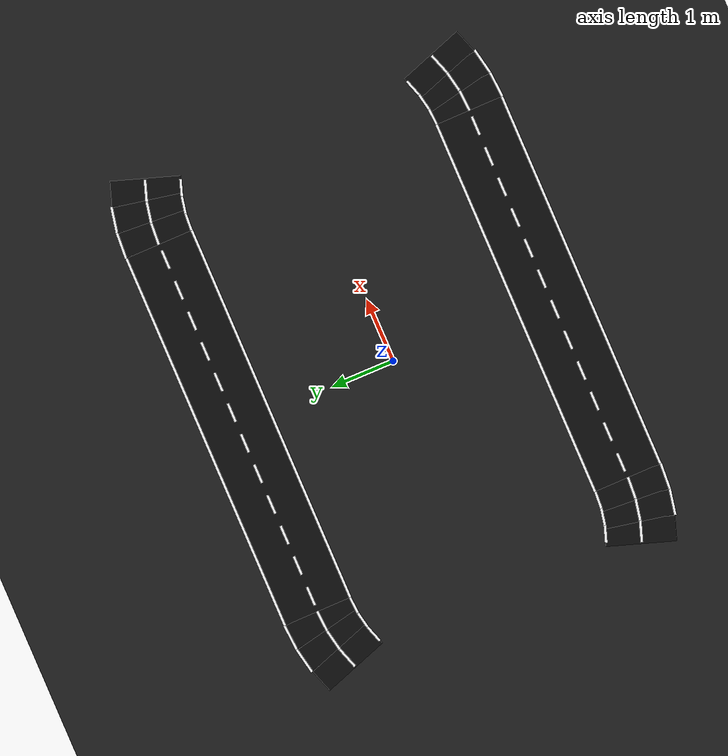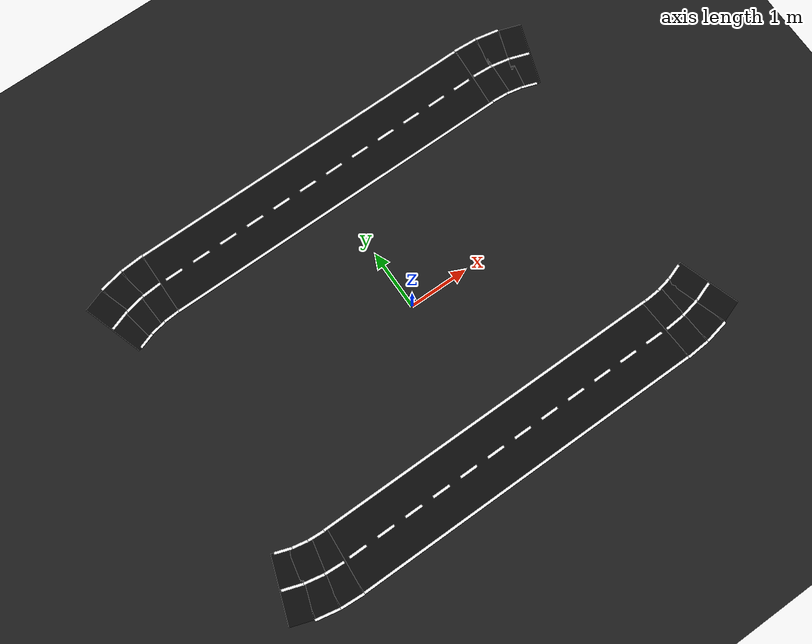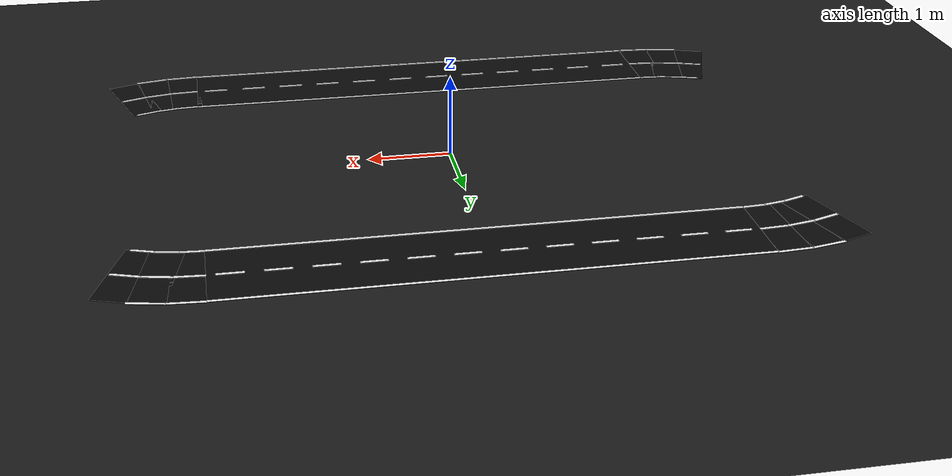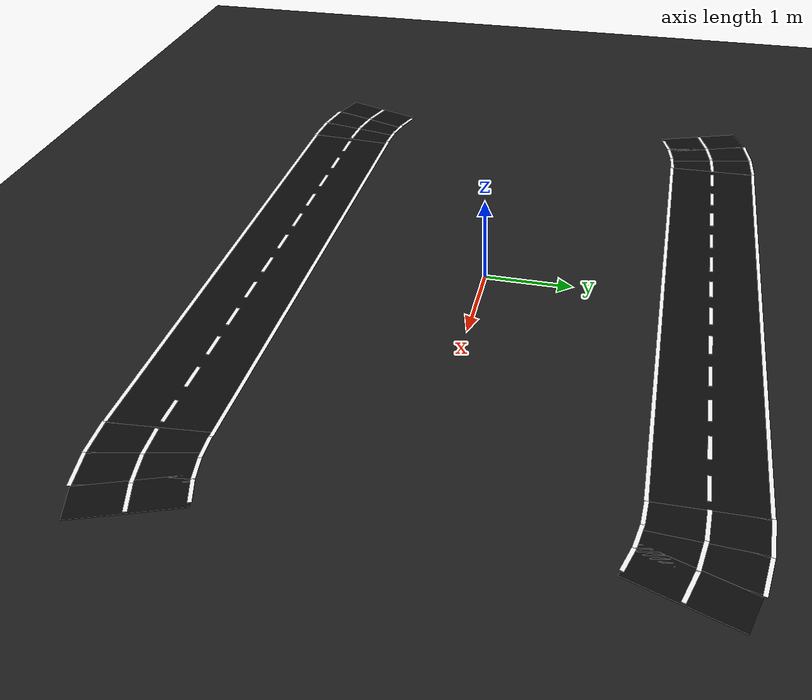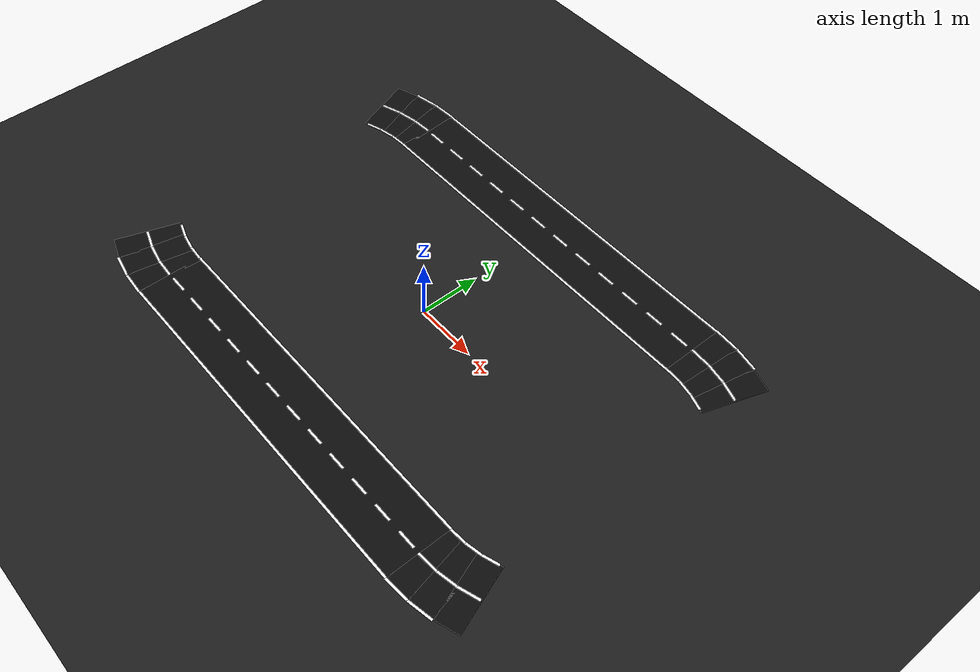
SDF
<sdf version="1.6">
 <world name="oval_lane_world">
  <model name="ground_plane">
   <static>true</static>
   <link name="link">
    <collision name="collision">
     <geometry><plane><normal>0 0 1</normal><size>100 100</size></plane></geometry>
     <surface><friction><ode><mu>1.0</mu><mu2>1.0</mu2></ode></friction></surface>
    </collision>
    <visual name="visual">
     <geometry><plane><normal>0 0 1</normal><size>100 100</size></plane></geometry>
     <material><ambient>0.10 0.10 0.10 1</ambient><diffuse>0.12 0.12 0.12 1</diffuse></material>
    </visual>
   </link>
  </model>
  <model name="road_top">
   <static>true</static>
   <pose>0.00000 2.53400 0.00250 0 0 0.00000</pose>
   <link name="link">
    <visual name="visual">
     <geometry><box><size>6.00000 1.06800 0.00500</size></box></geometry>
     <material>
      <ambient>0.030 0.030 0.030 1</ambient>
      <diffuse>0.050 0.050 0.050 1</diffuse>
      <specular>0.05 0.05 0.05 1</specular>
     </material>
    </visual>
   </link>
  </model>
  <model name="road_bot">
   <static>true</static>
   <pose>0.00000 -2.53400 0.00250 0 0 0.00000</pose>
   <link name="link">
    <visual name="visual">
     <geometry><box><size>6.00000 1.06800 0.00500</size></box></geometry>
     <material>
      <ambient>0.030 0.030 0.030 1</ambient>
      <diffuse>0.050 0.050 0.050 1</diffuse>
      <specular>0.05 0.05 0.05 1</specular>
     </material>
    </visual>
   </link>
  </model>
  <model name="sl_top_0">
   <static>true</static>
   <pose>0.00000 2.00000 0.00700 0 0 0.00000</pose>
   <link name="link">
    <visual name="visual">
     <geometry><box><size>6.00000 0.04000 0.00400</size></box></geometry>
     <material>
      <ambient>1.000 1.000 1.000 1</ambient>
      <diffuse>1.000 1.000 1.000 1</diffuse>
      <specular>0.05 0.05 0.05 1</specular>
     </material>
    </visual>
   </link>
  </model>
  <model name="sl_bot_0">
   <static>true</static>
   <pose>0.00000 -2.00000 0.00700 0 0 0.00000</pose>
   <link name="link">
    <visual name="visual">
     <geometry><box><size>6.00000 0.04000 0.00400</size></box></geometry>
     <material>
      <ambient>1.000 1.000 1.000 1</ambient>
      <diffuse>1.000 1.000 1.000 1</diffuse>
      <specular>0.05 0.05 0.05 1</specular>
     </material>
    </visual>
   </link>
  </model>
  <model name="dl_top_1_0">
   <static>true</static>
   <pose>-2.75000 2.53400 0.00700 0 0 0.00000</pose>
   <link name="link">
    <visual name="visual">
     <geometry><box><size>0.30000 0.04000 0.00400</size></box></geometry>
     <material>
      <ambient>1.000 1.000 1.000 1</ambient>
      <diffuse>1.000 1.000 1.000 1</diffuse>
      <specular>0.05 0.05 0.05 1</specular>
     </material>
    </visual>
   </link>
  </model>
  <model name="dl_top_1_1">
   <static>true</static>
   <pose>-2.25000 2.53400 0.00700 0 0 0.00000</pose>
   <link name="link">
    <visual name="visual">
     <geometry><box><size>0.30000 0.04000 0.00400</size></box></geometry>
     <material>
      <ambient>1.000 1.000 1.000 1</ambient>
      <diffuse>1.000 1.000 1.000 1</diffuse>
      <specular>0.05 0.05 0.05 1</specular>
     </material>
    </visual>
   </link>
  </model>
  <model name="dl_top_1_2">
   <static>true</static>
   <pose>-1.75000 2.53400 0.00700 0 0 0.00000</pose>
   <link name="link">
    <visual name="visual">
     <geometry><box><size>0.30000 0.04000 0.00400</size></box></geometry>
     <material>
      <ambient>1.000 1.000 1.000 1</ambient>
      <diffuse>1.000 1.000 1.000 1</diffuse>
      <specular>0.05 0.05 0.05 1</specular>
     </material>
    </visual>
   </link>
  </model>
  <model name="dl_top_1_3">
   <static>true</static>
   <pose>-1.25000 2.53400 0.00700 0 0 0.00000</pose>
   <link name="link">
    <visual name="visual">
     <geometry><box><size>0.30000 0.04000 0.00400</size></box></geometry>
     <material>
      <ambient>1.000 1.000 1.000 1</ambient>
      <diffuse>1.000 1.000 1.000 1</diffuse>
      <specular>0.05 0.05 0.05 1</specular>
     </material>
    </visual>
   </link>
  </model>
  <model name="dl_top_1_4">
   <static>true</static>
   <pose>-0.75000 2.53400 0.00700 0 0 0.00000</pose>
   <link name="link">
    <visual name="visual">
     <geometry><box><size>0.30000 0.04000 0.00400</size></box></geometry>
     <material>
      <ambient>1.000 1.000 1.000 1</ambient>
      <diffuse>1.000 1.000 1.000 1</diffuse>
      <specular>0.05 0.05 0.05 1</specular>
     </material>
    </visual>
   </link>
  </model>
  <model name="dl_top_1_5">
   <static>true</static>
   <pose>-0.25000 2.53400 0.00700 0 0 0.00000</pose>
   <link name="link">
    <visual name="visual">
     <geometry><box><size>0.30000 0.04000 0.00400</size></box></geometry>
     <material>
      <ambient>1.000 1.000 1.000 1</ambient>
      <diffuse>1.000 1.000 1.000 1</diffuse>
      <specular>0.05 0.05 0.05 1</specular>
     </material>
    </visual>
   </link>
  </model>
  <model name="dl_top_1_6">
   <static>true</static>
   <pose>0.25000 2.53400 0.00700 0 0 0.00000</pose>
   <link name="link">
    <visual name="visual">
     <geometry><box><size>0.30000 0.04000 0.00400</size></box></geometry>
     <material>
      <ambient>1.000 1.000 1.000 1</ambient>
      <diffuse>1.000 1.000 1.000 1</diffuse>
      <specular>0.05 0.05 0.05 1</specular>
     </material>
    </visual>
   </link>
  </model>
  <model name="dl_top_1_7">
   <static>true</static>
   <pose>0.75000 2.53400 0.00700 0 0 0.00000</pose>
   <link name="link">
    <visual name="visual">
     <geometry><box><size>0.30000 0.04000 0.00400</size></box></geometry>
     <material>
      <ambient>1.000 1.000 1.000 1</ambient>
      <diffuse>1.000 1.000 1.000 1</diffuse>
      <specular>0.05 0.05 0.05 1</specular>
     </material>
    </visual>
   </link>
  </model>
  <model name="dl_top_1_8">
   <static>true</static>
   <pose>1.25000 2.53400 0.00700 0 0 0.00000</pose>
   <link name="link">
    <visual name="visual">
     <geometry><box><size>0.30000 0.04000 0.00400</size></box></geometry>
     <material>
      <ambient>1.000 1.000 1.000 1</ambient>
      <diffuse>1.000 1.000 1.000 1</diffuse>
      <specular>0.05 0.05 0.05 1</specular>
     </material>
    </visual>
   </link>
  </model>
  <model name="dl_top_1_9">
   <static>true</static>
   <pose>1.75000 2.53400 0.00700 0 0 0.00000</pose>
   <link name="link">
    <visual name="visual">
     <geometry><box><size>0.30000 0.04000 0.00400</size></box></geometry>
     <material>
      <ambient>1.000 1.000 1.000 1</ambient>
      <diffuse>1.000 1.000 1.000 1</diffuse>
      <specular>0.05 0.05 0.05 1</specular>
     </material>
    </visual>
   </link>
  </model>
  <model name="dl_top_1_10">
   <static>true</static>
   <pose>2.25000 2.53400 0.00700 0 0 0.00000</pose>
   <link name="link">
    <visual name="visual">
     <geometry><box><size>0.30000 0.04000 0.00400</size></box></geometry>
     <material>
      <ambient>1.000 1.000 1.000 1</ambient>
      <diffuse>1.000 1.000 1.000 1</diffuse>
      <specular>0.05 0.05 0.05 1</specular>
     </material>
    </visual>
   </link>
  </model>
  <model name="dl_top_1_11">
   <static>true</static>
   <pose>2.75000 2.53400 0.00700 0 0 0.00000</pose>
   <link name="link">
    <visual name="visual">
     <geometry><box><size>0.30000 0.04000 0.00400</size></box></geometry>
     <material>
      <ambient>1.000 1.000 1.000 1</ambient>
      <diffuse>1.000 1.000 1.000 1</diffuse>
      <specular>0.05 0.05 0.05 1</specular>
     </material>
    </visual>
   </link>
  </model>
  <model name="dl_bot_1_0">
   <static>true</static>
   <pose>-2.75000 -2.53400 0.00700 0 0 0.00000</pose>
   <link name="link">
    <visual name="visual">
     <geometry><box><size>0.30000 0.04000 0.00400</size></box></geometry>
     <material>
      <ambient>1.000 1.000 1.000 1</ambient>
      <diffuse>1.000 1.000 1.000 1</diffuse>
      <specular>0.05 0.05 0.05 1</specular>
     </material>
    </visual>
   </link>
  </model>
  <model name="dl_bot_1_1">
   <static>true</static>
   <pose>-2.25000 -2.53400 0.00700 0 0 0.00000</pose>
   <link name="link">
    <visual name="visual">
     <geometry><box><size>0.30000 0.04000 0.00400</size></box></geometry>
     <material>
      <ambient>1.000 1.000 1.000 1</ambient>
      <diffuse>1.000 1.000 1.000 1</diffuse>
      <specular>0.05 0.05 0.05 1</specular>
     </material>
    </visual>
   </link>
  </model>
  <model name="dl_bot_1_2">
   <static>true</static>
   <pose>-1.75000 -2.53400 0.00700 0 0 0.00000</pose>
   <link name="link">
    <visual name="visual">
     <geometry><box><size>0.30000 0.04000 0.00400</size></box></geometry>
     <material>
      <ambient>1.000 1.000 1.000 1</ambient>
      <diffuse>1.000 1.000 1.000 1</diffuse>
      <specular>0.05 0.05 0.05 1</specular>
     </material>
    </visual>
   </link>
  </model>
  <model name="dl_bot_1_3">
   <static>true</static>
   <pose>-1.25000 -2.53400 0.00700 0 0 0.00000</pose>
   <link name="link">
    <visual name="visual">
     <geometry><box><size>0.30000 0.04000 0.00400</size></box></geometry>
     <material>
      <ambient>1.000 1.000 1.000 1</ambient>
      <diffuse>1.000 1.000 1.000 1</diffuse>
      <specular>0.05 0.05 0.05 1</specular>
     </material>
    </visual>
   </link>
  </model>
  <model name="dl_bot_1_4">
   <static>true</static>
   <pose>-0.75000 -2.53400 0.00700 0 0 0.00000</pose>
   <link name="link">
    <visual name="visual">
     <geometry><box><size>0.30000 0.04000 0.00400</size></box></geometry>
     <material>
      <ambient>1.000 1.000 1.000 1</ambient>
      <diffuse>1.000 1.000 1.000 1</diffuse>
      <specular>0.05 0.05 0.05 1</specular>
     </material>
    </visual>
   </link>
  </model>
  <model name="dl_bot_1_5">
   <static>true</static>
   <pose>-0.25000 -2.53400 0.00700 0 0 0.00000</pose>
   <link name="link">
    <visual name="visual">
     <geometry><box><size>0.30000 0.04000 0.00400</size></box></geometry>
     <material>
      <ambient>1.000 1.000 1.000 1</ambient>
      <diffuse>1.000 1.000 1.000 1</diffuse>
      <specular>0.05 0.05 0.05 1</specular>
     </material>
    </visual>
   </link>
  </model>
  <model name="dl_bot_1_6">
   <static>true</static>
   <pose>0.25000 -2.53400 0.00700 0 0 0.00000</pose>
   <link name="link">
    <visual name="visual">
     <geometry><box><size>0.30000 0.04000 0.00400</size></box></geometry>
     <material>
      <ambient>1.000 1.000 1.000 1</ambient>
      <diffuse>1.000 1.000 1.000 1</diffuse>
      <specular>0.05 0.05 0.05 1</specular>
     </material>
    </visual>
   </link>
  </model>
  <model name="dl_bot_1_7">
   <static>true</static>
   <pose>0.75000 -2.53400 0.00700 0 0 0.00000</pose>
   <link name="link">
    <visual name="visual">
     <geometry><box><size>0.30000 0.04000 0.00400</size></box></geometry>
     <material>
      <ambient>1.000 1.000 1.000 1</ambient>
      <diffuse>1.000 1.000 1.000 1</diffuse>
      <specular>0.05 0.05 0.05 1</specular>
     </material>
    </visual>
   </link>
  </model>
  <model name="dl_bot_1_8">
   <static>true</static>
   <pose>1.25000 -2.53400 0.00700 0 0 0.00000</pose>
   <link name="link">
    <visual name="visual">
     <geometry><box><size>0.30000 0.04000 0.00400</size></box></geometry>
     <material>
      <ambient>1.000 1.000 1.000 1</ambient>
      <diffuse>1.000 1.000 1.000 1</diffuse>
      <specular>0.05 0.05 0.05 1</specular>
     </material>
    </visual>
   </link>
  </model>
  <model name="dl_bot_1_9">
   <static>true</static>
   <pose>1.75000 -2.53400 0.00700 0 0 0.00000</pose>
   <link name="link">
    <visual name="visual">
     <geometry><box><size>0.30000 0.04000 0.00400</size></box></geometry>
     <material>
      <ambient>1.000 1.000 1.000 1</ambient>
      <diffuse>1.000 1.000 1.000 1</diffuse>
      <specular>0.05 0.05 0.05 1</specular>
     </material>
    </visual>
   </link>
  </model>
  <model name="dl_bot_1_10">
   <static>true</static>
   <pose>2.25000 -2.53400 0.00700 0 0 0.00000</pose>
   <link name="link">
    <visual name="visual">
     <geometry><box><size>0.30000 0.04000 0.00400</size></box></geometry>
     <material>
      <ambient>1.000 1.000 1.000 1</ambient>
      <diffuse>1.000 1.000 1.000 1</diffuse>
      <specular>0.05 0.05 0.05 1</specular>
     </material>
    </visual>
   </link>
  </model>
  <model name="dl_bot_1_11">
   <static>true</static>
   <pose>2.75000 -2.53400 0.00700 0 0 0.00000</pose>
   <link name="link">
    <visual name="visual">
     <geometry><box><size>0.30000 0.04000 0.00400</size></box></geometry>
     <material>
      <ambient>1.000 1.000 1.000 1</ambient>
      <diffuse>1.000 1.000 1.000 1</diffuse>
      <specular>0.05 0.05 0.05 1</specular>
     </material>
    </visual>
   </link>
  </model>
  <model name="sl_top_2">
   <static>true</static>
   <pose>0.00000 3.06800 0.00700 0 0 0.00000</pose>
   <link name="link">
    <visual name="visual">
     <geometry><box><size>6.00000 0.04000 0.00400</size></box></geometry>
     <material>
      <ambient>1.000 1.000 1.000 1</ambient>
      <diffuse>1.000 1.000 1.000 1</diffuse>
      <specular>0.05 0.05 0.05 1</specular>
     </material>
    </visual>
   </link>
  </model>
  <model name="sl_bot_2">
   <static>true</static>
   <pose>0.00000 -3.06800 0.00700 0 0 0.00000</pose>
   <link name="link">
    <visual name="visual">
     <geometry><box><size>6.00000 0.04000 0.00400</size></box></geometry>
     <material>
      <ambient>1.000 1.000 1.000 1</ambient>
      <diffuse>1.000 1.000 1.000 1</diffuse>
      <specular>0.05 0.05 0.05 1</specular>
     </material>
    </visual>
   </link>
  </model>
  <model name="road_r_0">
   <static>true</static>
   <pose>3.16524 2.52109 0.00250 0.0 0.0 -0.06545</pose>
   <link name="link">
    <visual name="visual">
     <geometry><box><size>0.38165 1.06800 0.00500</size></box></geometry>
     <material>
      <ambient>0.030 0.030 0.030 1</ambient>
      <diffuse>0.050 0.050 0.050 1</diffuse>
      <specular>0.05 0.05 0.05 1</specular>
     </material>
    </visual>
   </link>
  </model>
  <model name="cl_r_0_0">
   <static>true</static>
   <pose>3.13081 1.99572 0.00700 0 0 -0.06545</pose>
   <link name="link">
    <visual name="visual">
     <geometry><box><size>0.27180 0.04000 0.00400</size></box></geometry>
     <material>
      <ambient>1.000 1.000 1.000 1</ambient>
      <diffuse>1.000 1.000 1.000 1</diffuse>
      <specular>0.05 0.05 0.05 1</specular>
     </material>
    </visual>
   </link>
  </model>
  <model name="cl_r_1_0">
   <static>true</static>
   <pose>3.16573 2.52857 0.00700 0 0 -0.06545</pose>
   <link name="link">
    <visual name="visual">
     <geometry><box><size>0.34170 0.04000 0.00400</size></box></geometry>
     <material>
      <ambient>1.000 1.000 1.000 1</ambient>
      <diffuse>1.000 1.000 1.000 1</diffuse>
      <specular>0.05 0.05 0.05 1</specular>
     </material>
    </visual>
   </link>
  </model>
  <model name="cl_r_2_0">
   <static>true</static>
   <pose>3.20066 3.06143 0.00700 0 0 -0.06545</pose>
   <link name="link">
    <visual name="visual">
     <geometry><box><size>0.41160 0.04000 0.00400</size></box></geometry>
     <material>
      <ambient>1.000 1.000 1.000 1</ambient>
      <diffuse>1.000 1.000 1.000 1</diffuse>
      <specular>0.05 0.05 0.05 1</specular>
     </material>
    </visual>
   </link>
  </model>
  <model name="road_r_1">
   <static>true</static>
   <pose>3.49290 2.47795 0.00250 0.0 0.0 -0.19635</pose>
   <link name="link">
    <visual name="visual">
     <geometry><box><size>0.38165 1.06800 0.00500</size></box></geometry>
     <material>
      <ambient>0.030 0.030 0.030 1</ambient>
      <diffuse>0.050 0.050 0.050 1</diffuse>
      <specular>0.05 0.05 0.05 1</specular>
     </material>
    </visual>
   </link>
  </model>
  <model name="cl_r_0_1">
   <static>true</static>
   <pose>3.39018 1.96157 0.00700 0 0 -0.19635</pose>
   <link name="link">
    <visual name="visual">
     <geometry><box><size>0.27180 0.04000 0.00400</size></box></geometry>
     <material>
      <ambient>1.000 1.000 1.000 1</ambient>
      <diffuse>1.000 1.000 1.000 1</diffuse>
      <specular>0.05 0.05 0.05 1</specular>
     </material>
    </visual>
   </link>
  </model>
  <model name="cl_r_1_1">
   <static>true</static>
   <pose>3.49436 2.48531 0.00700 0 0 -0.19635</pose>
   <link name="link">
    <visual name="visual">
     <geometry><box><size>0.34170 0.04000 0.00400</size></box></geometry>
     <material>
      <ambient>1.000 1.000 1.000 1</ambient>
      <diffuse>1.000 1.000 1.000 1</diffuse>
      <specular>0.05 0.05 0.05 1</specular>
     </material>
    </visual>
   </link>
  </model>
  <model name="cl_r_2_1">
   <static>true</static>
   <pose>3.59854 3.00905 0.00700 0 0 -0.19635</pose>
   <link name="link">
    <visual name="visual">
     <geometry><box><size>0.41160 0.04000 0.00400</size></box></geometry>
     <material>
      <ambient>1.000 1.000 1.000 1</ambient>
      <diffuse>1.000 1.000 1.000 1</diffuse>
      <specular>0.05 0.05 0.05 1</specular>
     </material>
    </visual>
   </link>
  </model>
  <model name="road_r_2">
   <static>true</static>
   <pose>3.81211 2.39242 0.00250 0.0 0.0 -0.32725</pose>
   <link name="link">
    <visual name="visual">
     <geometry><box><size>0.38165 1.06800 0.00500</size></box></geometry>
     <material>
      <ambient>0.030 0.030 0.030 1</ambient>
      <diffuse>0.050 0.050 0.050 1</diffuse>
      <specular>0.05 0.05 0.05 1</specular>
     </material>
    </visual>
   </link>
  </model>
  <model name="cl_r_0_2">
   <static>true</static>
   <pose>3.64288 1.89386 0.00700 0 0 -0.32725</pose>
   <link name="link">
    <visual name="visual">
     <geometry><box><size>0.27180 0.04000 0.00400</size></box></geometry>
     <material>
      <ambient>1.000 1.000 1.000 1</ambient>
      <diffuse>1.000 1.000 1.000 1</diffuse>
      <specular>0.05 0.05 0.05 1</specular>
     </material>
    </visual>
   </link>
  </model>
  <model name="cl_r_1_2">
   <static>true</static>
   <pose>3.81453 2.39952 0.00700 0 0 -0.32725</pose>
   <link name="link">
    <visual name="visual">
     <geometry><box><size>0.34170 0.04000 0.00400</size></box></geometry>
     <material>
      <ambient>1.000 1.000 1.000 1</ambient>
      <diffuse>1.000 1.000 1.000 1</diffuse>
      <specular>0.05 0.05 0.05 1</specular>
     </material>
    </visual>
   </link>
  </model>
  <model name="road_r_21">
   <static>true</static>
   <pose>3.81211 -2.39242 0.00250 0.0 0.0 -2.81434</pose>
   <link name="link">
    <visual name="visual">
     <geometry><box><size>0.38165 1.06800 0.00500</size></box></geometry>
     <material>
      <ambient>0.030 0.030 0.030 1</ambient>
      <diffuse>0.050 0.050 0.050 1</diffuse>
      <specular>0.05 0.05 0.05 1</specular>
     </material>
    </visual>
   </link>
  </model>
  <model name="cl_r_0_21">
   <static>true</static>
   <pose>3.64288 -1.89386 0.00700 0 0 -2.81434</pose>
   <link name="link">
    <visual name="visual">
     <geometry><box><size>0.27180 0.04000 0.00400</size></box></geometry>
     <material>
      <ambient>1.000 1.000 1.000 1</ambient>
      <diffuse>1.000 1.000 1.000 1</diffuse>
      <specular>0.05 0.05 0.05 1</specular>
     </material>
    </visual>
   </link>
  </model>
  <model name="cl_r_1_21">
   <static>true</static>
   <pose>3.81453 -2.39952 0.00700 0 0 -2.81434</pose>
   <link name="link">
    <visual name="visual">
     <geometry><box><size>0.34170 0.04000 0.00400</size></box></geometry>
     <material>
      <ambient>1.000 1.000 1.000 1</ambient>
      <diffuse>1.000 1.000 1.000 1</diffuse>
      <specular>0.05 0.05 0.05 1</specular>
     </material>
    </visual>
   </link>
  </model>
  <model name="road_r_22">
   <static>true</static>
   <pose>3.49290 -2.47795 0.00250 0.0 0.0 -2.94524</pose>
   <link name="link">
    <visual name="visual">
     <geometry><box><size>0.38165 1.06800 0.00500</size></box></geometry>
     <material>
      <ambient>0.030 0.030 0.030 1</ambient>
      <diffuse>0.050 0.050 0.050 1</diffuse>
      <specular>0.05 0.05 0.05 1</specular>
     </material>
    </visual>
   </link>
  </model>
  <model name="cl_r_0_22">
   <static>true</static>
   <pose>3.39018 -1.96157 0.00700 0 0 -2.94524</pose>
   <link name="link">
    <visual name="visual">
     <geometry><box><size>0.27180 0.04000 0.00400</size></box></geometry>
     <material>
      <ambient>1.000 1.000 1.000 1</ambient>
      <diffuse>1.000 1.000 1.000 1</diffuse>
      <specular>0.05 0.05 0.05 1</specular>
     </material>
    </visual>
   </link>
  </model>
  <model name="cl_r_1_22">
   <static>true</static>
   <pose>3.49436 -2.48531 0.00700 0 0 -2.94524</pose>
   <link name="link">
    <visual name="visual">
     <geometry><box><size>0.34170 0.04000 0.00400</size></box></geometry>
     <material>
      <ambient>1.000 1.000 1.000 1</ambient>
      <diffuse>1.000 1.000 1.000 1</diffuse>
      <specular>0.05 0.05 0.05 1</specular>
     </material>
    </visual>
   </link>
  </model>
  <model name="cl_r_2_22">
   <static>true</static>
   <pose>3.59854 -3.00905 0.00700 0 0 -2.94524</pose>
   <link name="link">
    <visual name="visual">
     <geometry><box><size>0.41160 0.04000 0.00400</size></box></geometry>
     <material>
      <ambient>1.000 1.000 1.000 1</ambient>
      <diffuse>1.000 1.000 1.000 1</diffuse>
      <specular>0.05 0.05 0.05 1</specular>
     </material>
    </visual>
   </link>
  </model>
  <model name="road_r_23">
   <static>true</static>
   <pose>3.16524 -2.52109 0.00250 0.0 0.0 -3.07614</pose>
   <link name="link">
    <visual name="visual">
     <geometry><box><size>0.38165 1.06800 0.00500</size></box></geometry>
     <material>
      <ambient>0.030 0.030 0.030 1</ambient>
      <diffuse>0.050 0.050 0.050 1</diffuse>
      <specular>0.05 0.05 0.05 1</specular>
     </material>
    </visual>
   </link>
  </model>
  <model name="cl_r_0_23">
   <static>true</static>
   <pose>3.13081 -1.99572 0.00700 0 0 -3.07614</pose>
   <link name="link">
    <visual name="visual">
     <geometry><box><size>0.27180 0.04000 0.00400</size></box></geometry>
     <material>
      <ambient>1.000 1.000 1.000 1</ambient>
      <diffuse>1.000 1.000 1.000 1</diffuse>
      <specular>0.05 0.05 0.05 1</specular>
     </material>
    </visual>
   </link>
  </model>
  <model name="cl_r_1_23">
   <static>true</static>
   <pose>3.16573 -2.52858 0.00700 0 0 -3.07614</pose>
   <link name="link">
    <visual name="visual">
     <geometry><box><size>0.34170 0.04000 0.00400</size></box></geometry>
     <material>
      <ambient>1.000 1.000 1.000 1</ambient>
      <diffuse>1.000 1.000 1.000 1</diffuse>
      <specular>0.05 0.05 0.05 1</specular>
     </material>
    </visual>
   </link>
  </model>
  <model name="cl_r_2_23">
   <static>true</static>
   <pose>3.20066 -3.06143 0.00700 0 0 -3.07614</pose>
   <link name="link">
    <visual name="visual">
     <geometry><box><size>0.41160 0.04000 0.00400</size></box></geometry>
     <material>
      <ambient>1.000 1.000 1.000 1</ambient>
      <diffuse>1.000 1.000 1.000 1</diffuse>
      <specular>0.05 0.05 0.05 1</specular>
     </material>
    </visual>
   </link>
  </model>
  <model name="road_l_0">
   <static>true</static>
   <pose>-3.16524 -2.52109 0.00250 0.0 0.0 3.07614</pose>
   <link name="link">
    <visual name="visual">
     <geometry><box><size>0.38165 1.06800 0.00500</size></box></geometry>
     <material>
      <ambient>0.030 0.030 0.030 1</ambient>
      <diffuse>0.050 0.050 0.050 1</diffuse>
      <specular>0.05 0.05 0.05 1</specular>
     </material>
    </visual>
   </link>
  </model>
  <model name="cl_l_0_0">
   <static>true</static>
   <pose>-3.13081 -1.99572 0.00700 0 0 3.07614</pose>
   <link name="link">
    <visual name="visual">
     <geometry><box><size>0.27180 0.04000 0.00400</size></box></geometry>
     <material>
      <ambient>1.000 1.000 1.000 1</ambient>
      <diffuse>1.000 1.000 1.000 1</diffuse>
      <specular>0.05 0.05 0.05 1</specular>
     </material>
    </visual>
   </link>
  </model>
  <model name="cl_l_1_0">
   <static>true</static>
   <pose>-3.16573 -2.52857 0.00700 0 0 3.07614</pose>
   <link name="link">
    <visual name="visual">
     <geometry><box><size>0.34170 0.04000 0.00400</size></box></geometry>
     <material>
      <ambient>1.000 1.000 1.000 1</ambient>
      <diffuse>1.000 1.000 1.000 1</diffuse>
      <specular>0.05 0.05 0.05 1</specular>
     </material>
    </visual>
   </link>
  </model>
  <model name="cl_l_2_0">
   <static>true</static>
   <pose>-3.20066 -3.06143 0.00700 0 0 3.07614</pose>
   <link name="link">
    <visual name="visual">
     <geometry><box><size>0.41160 0.04000 0.00400</size></box></geometry>
     <material>
      <ambient>1.000 1.000 1.000 1</ambient>
      <diffuse>1.000 1.000 1.000 1</diffuse>
      <specular>0.05 0.05 0.05 1</specular>
     </material>
    </visual>
   </link>
  </model>
  <model name="road_l_1">
   <static>true</static>
   <pose>-3.49290 -2.47795 0.00250 0.0 0.0 2.94524</pose>
   <link name="link">
    <visual name="visual">
     <geometry><box><size>0.38165 1.06800 0.00500</size></box></geometry>
     <material>
      <ambient>0.030 0.030 0.030 1</ambient>
      <diffuse>0.050 0.050 0.050 1</diffuse>
      <specular>0.05 0.05 0.05 1</specular>
     </material>
    </visual>
   </link>
  </model>
  <model name="cl_l_0_1">
   <static>true</static>
   <pose>-3.39018 -1.96157 0.00700 0 0 2.94524</pose>
   <link name="link">
    <visual name="visual">
     <geometry><box><size>0.27180 0.04000 0.00400</size></box></geometry>
     <material>
      <ambient>1.000 1.000 1.000 1</ambient>
      <diffuse>1.000 1.000 1.000 1</diffuse>
      <specular>0.05 0.05 0.05 1</specular>
     </material>
    </visual>
   </link>
  </model>
  <model name="cl_l_1_1">
   <static>true</static>
   <pose>-3.49436 -2.48531 0.00700 0 0 2.94524</pose>
   <link name="link">
    <visual name="visual">
     <geometry><box><size>0.34170 0.04000 0.00400</size></box></geometry>
     <material>
      <ambient>1.000 1.000 1.000 1</ambient>
      <diffuse>1.000 1.000 1.000 1</diffuse>
      <specular>0.05 0.05 0.05 1</specular>
     </material>
    </visual>
   </link>
  </model>
  <model name="cl_l_2_1">
   <static>true</static>
   <pose>-3.59854 -3.00905 0.00700 0 0 2.94524</pose>
   <link name="link">
    <visual name="visual">
     <geometry><box><size>0.41160 0.04000 0.00400</size></box></geometry>
     <material>
      <ambient>1.000 1.000 1.000 1</ambient>
      <diffuse>1.000 1.000 1.000 1</diffuse>
      <specular>0.05 0.05 0.05 1</specular>
     </material>
    </visual>
   </link>
  </model>
  <model name="road_l_2">
   <static>true</static>
   <pose>-3.81211 -2.39242 0.00250 0.0 0.0 2.81434</pose>
   <link name="link">
    <visual name="visual">
     <geometry><box><size>0.38165 1.06800 0.00500</size></box></geometry>
     <material>
      <ambient>0.030 0.030 0.030 1</ambient>
      <diffuse>0.050 0.050 0.050 1</diffuse>
      <specular>0.05 0.05 0.05 1</specular>
     </material>
    </visual>
   </link>
  </model>
  <model name="cl_l_0_2">
   <static>true</static>
   <pose>-3.64288 -1.89386 0.00700 0 0 2.81434</pose>
   <link name="link">
    <visual name="visual">
     <geometry><box><size>0.27180 0.04000 0.00400</size></box></geometry>
     <material>
      <ambient>1.000 1.000 1.000 1</ambient>
      <diffuse>1.000 1.000 1.000 1</diffuse>
      <specular>0.05 0.05 0.05 1</specular>
     </material>
    </visual>
   </link>
  </model>
  <model name="cl_l_1_2">
   <static>true</static>
   <pose>-3.81453 -2.39952 0.00700 0 0 2.81434</pose>
   <link name="link">
    <visual name="visual">
     <geometry><box><size>0.34170 0.04000 0.00400</size></box></geometry>
     <material>
      <ambient>1.000 1.000 1.000 1</ambient>
      <diffuse>1.000 1.000 1.000 1</diffuse>
      <specular>0.05 0.05 0.05 1</specular>
     </material>
    </visual>
   </link>
  </model>
  <model name="road_l_21">
   <static>true</static>
   <pose>-3.81211 2.39242 0.00250 0.0 0.0 0.32725</pose>
   <link name="link">
    <visual name="visual">
     <geometry><box><size>0.38165 1.06800 0.00500</size></box></geometry>
     <material>
      <ambient>0.030 0.030 0.030 1</ambient>
      <diffuse>0.050 0.050 0.050 1</diffuse>
      <specular>0.05 0.05 0.05 1</specular>
     </material>
    </visual>
   </link>
  </model>
  <model name="cl_l_0_21">
   <static>true</static>
   <pose>-3.64288 1.89386 0.00700 0 0 0.32725</pose>
   <link name="link">
    <visual name="visual">
     <geometry><box><size>0.27180 0.04000 0.00400</size></box></geometry>
     <material>
      <ambient>1.000 1.000 1.000 1</ambient>
      <diffuse>1.000 1.000 1.000 1</diffuse>
      <specular>0.05 0.05 0.05 1</specular>
     </material>
    </visual>
   </link>
  </model>
  <model name="cl_l_1_21">
   <static>true</static>
   <pose>-3.81453 2.39952 0.00700 0 0 0.32725</pose>
   <link name="link">
    <visual name="visual">
     <geometry><box><size>0.34170 0.04000 0.00400</size></box></geometry>
     <material>
      <ambient>1.000 1.000 1.000 1</ambient>
      <diffuse>1.000 1.000 1.000 1</diffuse>
      <specular>0.05 0.05 0.05 1</specular>
     </material>
    </visual>
   </link>
  </model>
  <model name="road_l_22">
   <static>true</static>
   <pose>-3.49290 2.47795 0.00250 0.0 0.0 0.19635</pose>
   <link name="link">
    <visual name="visual">
     <geometry><box><size>0.38165 1.06800 0.00500</size></box></geometry>
     <material>
      <ambient>0.030 0.030 0.030 1</ambient>
      <diffuse>0.050 0.050 0.050 1</diffuse>
      <specular>0.05 0.05 0.05 1</specular>
     </material>
    </visual>
   </link>
  </model>
  <model name="cl_l_0_22">
   <static>true</static>
   <pose>-3.39018 1.96157 0.00700 0 0 0.19635</pose>
   <link name="link">
    <visual name="visual">
     <geometry><box><size>0.27180 0.04000 0.00400</size></box></geometry>
     <material>
      <ambient>1.000 1.000 1.000 1</ambient>
      <diffuse>1.000 1.000 1.000 1</diffuse>
      <specular>0.05 0.05 0.05 1</specular>
     </material>
    </visual>
   </link>
  </model>
  <model name="cl_l_1_22">
   <static>true</static>
   <pose>-3.49436 2.48531 0.00700 0 0 0.19635</pose>
   <link name="link">
    <visual name="visual">
     <geometry><box><size>0.34170 0.04000 0.00400</size></box></geometry>
     <material>
      <ambient>1.000 1.000 1.000 1</ambient>
      <diffuse>1.000 1.000 1.000 1</diffuse>
      <specular>0.05 0.05 0.05 1</specular>
     </material>
    </visual>
   </link>
  </model>
  <model name="cl_l_2_22">
   <static>true</static>
   <pose>-3.59854 3.00905 0.00700 0 0 0.19635</pose>
   <link name="link">
    <visual name="visual">
     <geometry><box><size>0.41160 0.04000 0.00400</size></box></geometry>
     <material>
      <ambient>1.000 1.000 1.000 1</ambient>
      <diffuse>1.000 1.000 1.000 1</diffuse>
      <specular>0.05 0.05 0.05 1</specular>
     </material>
    </visual>
   </link>
  </model>
  <model name="road_l_23">
   <static>true</static>
   <pose>-3.16524 2.52109 0.00250 0.0 0.0 0.06545</pose>
   <link name="link">
    <visual name="visual">
     <geometry><box><size>0.38165 1.06800 0.00500</size></box></geometry>
     <material>
      <ambient>0.030 0.030 0.030 1</ambient>
      <diffuse>0.050 0.050 0.050 1</diffuse>
      <specular>0.05 0.05 0.05 1</specular>
     </material>
    </visual>
   </link>
  </model>
  <model name="cl_l_0_23">
   <static>true</static>
   <pose>-3.13081 1.99572 0.00700 0 0 0.06545</pose>
   <link name="link">
    <visual name="visual">
     <geometry><box><size>0.27180 0.04000 0.00400</size></box></geometry>
     <material>
      <ambient>1.000 1.000 1.000 1</ambient>
      <diffuse>1.000 1.000 1.000 1</diffuse>
      <specular>0.05 0.05 0.05 1</specular>
     </material>
    </visual>
   </link>
  </model>
  <model name="cl_l_1_23">
   <static>true</static>
   <pose>-3.16573 2.52858 0.00700 0 0 0.06545</pose>
   <link name="link">
    <visual name="visual">
     <geometry><box><size>0.34170 0.04000 0.00400</size></box></geometry>
     <material>
      <ambient>1.000 1.000 1.000 1</ambient>
      <diffuse>1.000 1.000 1.000 1</diffuse>
      <specular>0.05 0.05 0.05 1</specular>
     </material>
    </visual>
   </link>
  </model>
  <model name="cl_l_2_23">
   <static>true</static>
   <pose>-3.20066 3.06143 0.00700 0 0 0.06545</pose>
   <link name="link">
    <visual name="visual">
     <geometry><box><size>0.41160 0.04000 0.00400</size></box></geometry>
     <material>
      <ambient>1.000 1.000 1.000 1</ambient>
      <diffuse>1.000 1.000 1.000 1</diffuse>
      <specular>0.05 0.05 0.05 1</specular>
     </material>
    </visual>
   </link>
  </model>
 </world>
</sdf>
